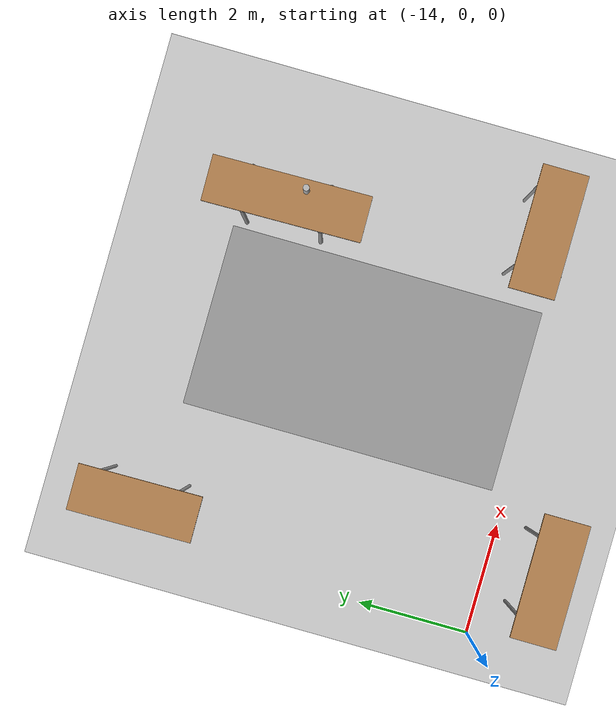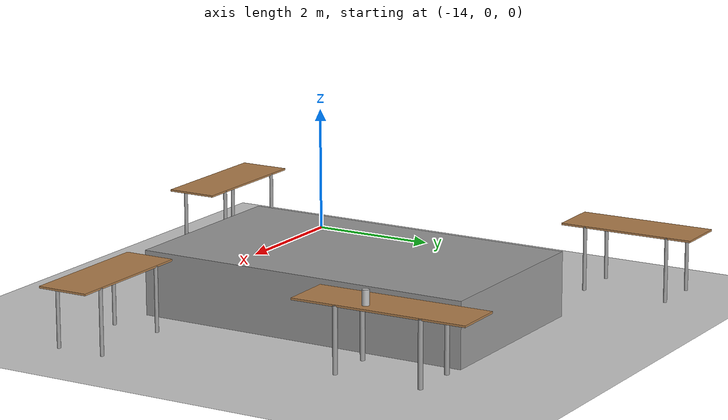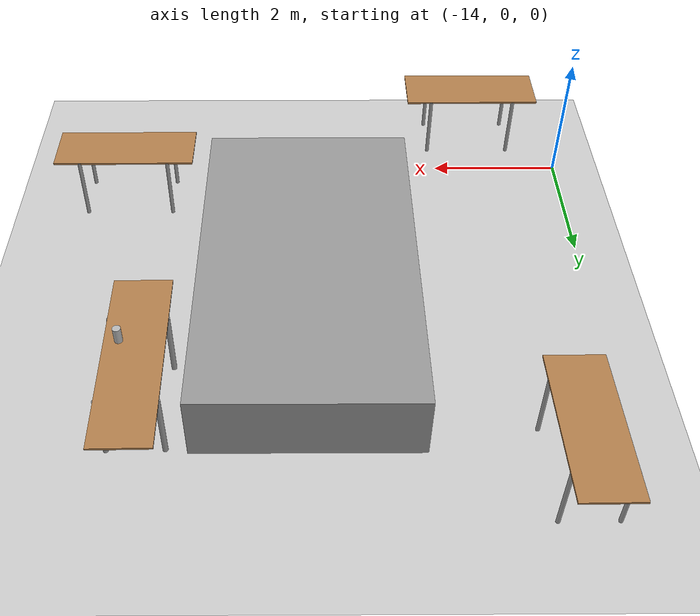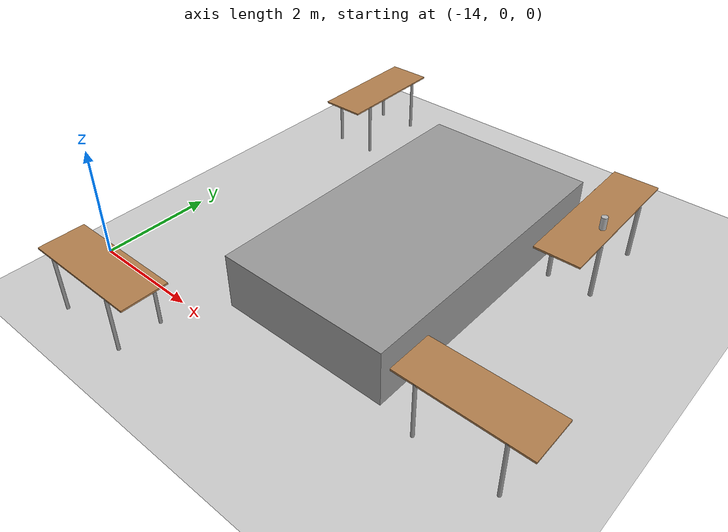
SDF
<sdf version="1.6">
 <world name="default">
  <model name="ground_plane">
   <static>1</static>
   <link name="link">
    <collision name="collision">
     <geometry><plane><normal>0 0 1</normal><size>100 100</size></plane></geometry>
     <surface><friction><ode><mu>100</mu><mu2>50</mu2></ode></friction></surface>
    </collision>
    <visual name="visual">
     <cast_shadows>0</cast_shadows>
     <geometry><plane><normal>0 0 1</normal><size>100 100</size></plane></geometry>
     <material>
      <script><uri>file://media/materials/scripts/gazebo.material</uri><name>Gazebo/Grey</name></script>
     </material>
    </visual>
   </link>
  </model>
  <model name="table">
   <link name="link">
    <pose>0.29068 0 0 0 -0 0</pose>
    <inertial>
     <inertia><ixx>0</ixx><ixy>0</ixy><ixz>0</ixz><iyy>0</iyy><iyz>0</iyz><izz>0</izz></inertia>
     <mass>0</mass>
    </inertial>
    <visual name="front_left_leg">
     <pose>0.68 0.38 0.5 0 -0 0</pose>
     <geometry><cylinder><radius>0.0286498</radius><length>1</length></cylinder></geometry>
     <material>
      <script><uri>file://media/materials/scripts/gazebo.material</uri><name>Gazebo/Grey</name></script>
     </material>
    </visual>
    <visual name="back_right_leg">
     <pose>-0.68 -0.38 0.5 0 -0 0</pose>
     <geometry><cylinder><radius>0.0286498</radius><length>1</length></cylinder></geometry>
     <material>
      <script><uri>file://media/materials/scripts/gazebo.material</uri><name>Gazebo/Grey</name></script>
     </material>
    </visual>
    <visual name="back_left_leg">
     <pose>-0.68 0.38 0.5 0 -0 0</pose>
     <geometry><cylinder><radius>0.0286498</radius><length>1</length></cylinder></geometry>
     <material>
      <script><uri>file://media/materials/scripts/gazebo.material</uri><name>Gazebo/Grey</name></script>
     </material>
    </visual>
    <visual name="front_right_leg">
     <pose>0.68 -0.38 0.5 0 -0 0</pose>
     <geometry><cylinder><radius>0.0286498</radius><length>1</length></cylinder></geometry>
     <material>
      <script><uri>file://media/materials/scripts/gazebo.material</uri><name>Gazebo/Grey</name></script>
     </material>
    </visual>
    <visual name="visual1">
     <pose>0 0 1 0 -0 0</pose>
     <geometry><box><size>2.14873 0.8 0.03</size></box></geometry>
     <material>
      <script><uri>file://media/materials/scripts/gazebo.material</uri><name>Gazebo/Wood</name></script>
     </material>
    </visual>
    <collision name="front_left_leg">
     <pose>0.68 0.38 0.5 0 -0 0</pose>
     <geometry><cylinder><radius>0.02865</radius><length>1</length></cylinder></geometry>
     <surface>
      <friction>
       <ode><mu>1</mu><mu2>1</mu2><fdir1>0 0 0</fdir1><slip1>0</slip1><slip2>0</slip2></ode>
       <torsional>
        <coefficient>1</coefficient>
        <patch_radius>0</patch_radius>
        <surface_radius>0</surface_radius>
        <use_patch_radius>1</use_patch_radius>
        <ode><slip>0</slip></ode>
       </torsional>
      </friction>
      <bounce><restitution_coefficient>0</restitution_coefficient><threshold>1e+06</threshold></bounce>
      <contact>
       <collide_without_contact>0</collide_without_contact>
       <collide_without_contact_bitmask>1</collide_without_contact_bitmask>
       <collide_bitmask>1</collide_bitmask>
       <ode>
        <soft_cfm>0</soft_cfm>
        <soft_erp>0.2</soft_erp>
        <kp>1e+13</kp>
        <kd>1</kd>
        <max_vel>0.01</max_vel>
        <min_depth>0</min_depth>
       </ode>
       <bullet>
        <split_impulse>1</split_impulse>
        <split_impulse_penetration_threshold>-0.01</split_impulse_penetration_threshold>
        <soft_cfm>0</soft_cfm>
        <soft_erp>0.2</soft_erp>
        <kp>1e+13</kp>
        <kd>1</kd>
       </bullet>
      </contact>
     </surface>
    </collision>
    <collision name="front_right_leg">
     <pose>0.68 -0.38 0.5 0 -0 0</pose>
     <geometry><cylinder><radius>0.02865</radius><length>1</length></cylinder></geometry>
     <surface>
      <friction>
       <ode><mu>1</mu><mu2>1</mu2><fdir1>0 0 0</fdir1><slip1>0</slip1><slip2>0</slip2></ode>
       <torsional>
        <coefficient>1</coefficient>
        <patch_radius>0</patch_radius>
        <surface_radius>0</surface_radius>
        <use_patch_radius>1</use_patch_radius>
        <ode><slip>0</slip></ode>
       </torsional>
      </friction>
      <bounce><restitution_coefficient>0</restitution_coefficient><threshold>1e+06</threshold></bounce>
      <contact>
       <collide_without_contact>0</collide_without_contact>
       <collide_without_contact_bitmask>1</collide_without_contact_bitmask>
       <collide_bitmask>1</collide_bitmask>
       <ode>
        <soft_cfm>0</soft_cfm>
        <soft_erp>0.2</soft_erp>
        <kp>1e+13</kp>
        <kd>1</kd>
        <max_vel>0.01</max_vel>
        <min_depth>0</min_depth>
       </ode>
       <bullet>
        <split_impulse>1</split_impulse>
        <split_impulse_penetration_threshold>-0.01</split_impulse_penetration_threshold>
        <soft_cfm>0</soft_cfm>
        <soft_erp>0.2</soft_erp>
        <kp>1e+13</kp>
        <kd>1</kd>
       </bullet>
      </contact>
     </surface>
    </collision>
    <collision name="back_right_leg">
     <pose>-0.68 -0.38 0.5 0 -0 0</pose>
     <geometry><cylinder><radius>0.02865</radius><length>1</length></cylinder></geometry>
     <surface>
      <friction>
       <ode><mu>1</mu><mu2>1</mu2><fdir1>0 0 0</fdir1><slip1>0</slip1><slip2>0</slip2></ode>
       <torsional>
        <coefficient>1</coefficient>
        <patch_radius>0</patch_radius>
        <surface_radius>0</surface_radius>
        <use_patch_radius>1</use_patch_radius>
        <ode><slip>0</slip></ode>
       </torsional>
      </friction>
      <bounce><restitution_coefficient>0</restitution_coefficient><threshold>1e+06</threshold></bounce>
      <contact>
       <collide_without_contact>0</collide_without_contact>
       <collide_without_contact_bitmask>1</collide_without_contact_bitmask>
       <collide_bitmask>1</collide_bitmask>
       <ode>
        <soft_cfm>0</soft_cfm>
        <soft_erp>0.2</soft_erp>
        <kp>1e+13</kp>
        <kd>1</kd>
        <max_vel>0.01</max_vel>
        <min_depth>0</min_depth>
       </ode>
       <bullet>
        <split_impulse>1</split_impulse>
        <split_impulse_penetration_threshold>-0.01</split_impulse_penetration_threshold>
        <soft_cfm>0</soft_cfm>
        <soft_erp>0.2</soft_erp>
        <kp>1e+13</kp>
        <kd>1</kd>
       </bullet>
      </contact>
     </surface>
    </collision>
    <collision name="back_left_leg">
     <pose>-0.68 0.38 0.5 0 -0 0</pose>
     <geometry><cylinder><radius>0.02865</radius><length>1</length></cylinder></geometry>
     <surface>
      <friction>
       <ode><mu>1</mu><mu2>1</mu2><fdir1>0 0 0</fdir1><slip1>0</slip1><slip2>0</slip2></ode>
       <torsional>
        <coefficient>1</coefficient>
        <patch_radius>0</patch_radius>
        <surface_radius>0</surface_radius>
        <use_patch_radius>1</use_patch_radius>
        <ode><slip>0</slip></ode>
       </torsional>
      </friction>
      <bounce><restitution_coefficient>0</restitution_coefficient><threshold>1e+06</threshold></bounce>
      <contact>
       <collide_without_contact>0</collide_without_contact>
       <collide_without_contact_bitmask>1</collide_without_contact_bitmask>
       <collide_bitmask>1</collide_bitmask>
       <ode>
        <soft_cfm>0</soft_cfm>
        <soft_erp>0.2</soft_erp>
        <kp>1e+13</kp>
        <kd>1</kd>
        <max_vel>0.01</max_vel>
        <min_depth>0</min_depth>
       </ode>
       <bullet>
        <split_impulse>1</split_impulse>
        <split_impulse_penetration_threshold>-0.01</split_impulse_penetration_threshold>
        <soft_cfm>0</soft_cfm>
        <soft_erp>0.2</soft_erp>
        <kp>1e+13</kp>
        <kd>1</kd>
       </bullet>
      </contact>
     </surface>
    </collision>
    <collision name="surface">
     <pose>0 0 1 0 -0 0</pose>
     <geometry><box><size>2.14873 0.8 0.03</size></box></geometry>
     <surface>
      <friction>
       <ode><mu>0.6</mu><mu2>0.6</mu2><fdir1>0 0 0</fdir1><slip1>0</slip1><slip2>0</slip2></ode>
       <torsional>
        <coefficient>1</coefficient>
        <patch_radius>0</patch_radius>
        <surface_radius>0</surface_radius>
        <use_patch_radius>1</use_patch_radius>
        <ode><slip>0</slip></ode>
       </torsional>
      </friction>
      <bounce><restitution_coefficient>0</restitution_coefficient><threshold>1e+06</threshold></bounce>
      <contact>
       <collide_without_contact>0</collide_without_contact>
       <collide_without_contact_bitmask>1</collide_without_contact_bitmask>
       <collide_bitmask>1</collide_bitmask>
       <ode>
        <soft_cfm>0</soft_cfm>
        <soft_erp>0.2</soft_erp>
        <kp>1e+13</kp>
        <kd>1</kd>
        <max_vel>0.01</max_vel>
        <min_depth>0</min_depth>
       </ode>
       <bullet>
        <split_impulse>1</split_impulse>
        <split_impulse_penetration_threshold>-0.01</split_impulse_penetration_threshold>
        <soft_cfm>0</soft_cfm>
        <soft_erp>0.2</soft_erp>
        <kp>1e+13</kp>
        <kd>1</kd>
       </bullet>
      </contact>
     </surface>
    </collision>
   </link>
   <static>1</static>
   <pose>-7.26339 0.73651 0 0 -0 0</pose>
  </model>
  <model name="table_clone_clone">
   <link name="link">
    <pose>0.29068 0 0 0 -0 0</pose>
    <inertial>
     <inertia><ixx>0</ixx><ixy>0</ixy><ixz>0</ixz><iyy>0</iyy><iyz>0</iyz><izz>0</izz></inertia>
     <mass>0</mass>
    </inertial>
    <visual name="back_left_leg">
     <pose>-0.68 0.38 0.5 0 -0 0</pose>
     <geometry><cylinder><radius>0.0363517</radius><length>1</length></cylinder></geometry>
     <material>
      <script><uri>file://media/materials/scripts/gazebo.material</uri><name>Gazebo/Grey</name></script>
     </material>
    </visual>
    <visual name="front_right_leg">
     <pose>0.68 -0.38 0.5 0 -0 0</pose>
     <geometry><cylinder><radius>0.0363517</radius><length>1</length></cylinder></geometry>
     <material>
      <script><uri>file://media/materials/scripts/gazebo.material</uri><name>Gazebo/Grey</name></script>
     </material>
    </visual>
    <visual name="back_right_leg">
     <pose>-0.68 -0.38 0.5 0 -0 0</pose>
     <geometry><cylinder><radius>0.0363517</radius><length>1</length></cylinder></geometry>
     <material>
      <script><uri>file://media/materials/scripts/gazebo.material</uri><name>Gazebo/Grey</name></script>
     </material>
    </visual>
    <visual name="front_left_leg">
     <pose>0.68 0.38 0.5 0 -0 0</pose>
     <geometry><cylinder><radius>0.0363517</radius><length>1</length></cylinder></geometry>
     <material>
      <script><uri>file://media/materials/scripts/gazebo.material</uri><name>Gazebo/Grey</name></script>
     </material>
    </visual>
    <visual name="visual1">
     <pose>0 0 1 0 -0 0</pose>
     <geometry><box><size>2.76183 0.8 0.03</size></box></geometry>
     <material>
      <script><uri>file://media/materials/scripts/gazebo.material</uri><name>Gazebo/Wood</name></script>
     </material>
    </visual>
    <collision name="front_left_leg">
     <pose>0.68 0.38 0.5 0 -0 0</pose>
     <geometry><cylinder><radius>0.036352</radius><length>1</length></cylinder></geometry>
     <surface>
      <friction>
       <ode><mu>1</mu><mu2>1</mu2><fdir1>0 0 0</fdir1><slip1>0</slip1><slip2>0</slip2></ode>
       <torsional>
        <coefficient>1</coefficient>
        <patch_radius>0</patch_radius>
        <surface_radius>0</surface_radius>
        <use_patch_radius>1</use_patch_radius>
        <ode><slip>0</slip></ode>
       </torsional>
      </friction>
      <bounce><restitution_coefficient>0</restitution_coefficient><threshold>1e+06</threshold></bounce>
      <contact>
       <collide_without_contact>0</collide_without_contact>
       <collide_without_contact_bitmask>1</collide_without_contact_bitmask>
       <collide_bitmask>1</collide_bitmask>
       <ode>
        <soft_cfm>0</soft_cfm>
        <soft_erp>0.2</soft_erp>
        <kp>1e+13</kp>
        <kd>1</kd>
        <max_vel>0.01</max_vel>
        <min_depth>0</min_depth>
       </ode>
       <bullet>
        <split_impulse>1</split_impulse>
        <split_impulse_penetration_threshold>-0.01</split_impulse_penetration_threshold>
        <soft_cfm>0</soft_cfm>
        <soft_erp>0.2</soft_erp>
        <kp>1e+13</kp>
        <kd>1</kd>
       </bullet>
      </contact>
     </surface>
    </collision>
    <collision name="front_right_leg">
     <pose>0.68 -0.38 0.5 0 -0 0</pose>
     <geometry><cylinder><radius>0.036352</radius><length>1</length></cylinder></geometry>
     <surface>
      <friction>
       <ode><mu>1</mu><mu2>1</mu2><fdir1>0 0 0</fdir1><slip1>0</slip1><slip2>0</slip2></ode>
       <torsional>
        <coefficient>1</coefficient>
        <patch_radius>0</patch_radius>
        <surface_radius>0</surface_radius>
        <use_patch_radius>1</use_patch_radius>
        <ode><slip>0</slip></ode>
       </torsional>
      </friction>
      <bounce><restitution_coefficient>0</restitution_coefficient><threshold>1e+06</threshold></bounce>
      <contact>
       <collide_without_contact>0</collide_without_contact>
       <collide_without_contact_bitmask>1</collide_without_contact_bitmask>
       <collide_bitmask>1</collide_bitmask>
       <ode>
        <soft_cfm>0</soft_cfm>
        <soft_erp>0.2</soft_erp>
        <kp>1e+13</kp>
        <kd>1</kd>
        <max_vel>0.01</max_vel>
        <min_depth>0</min_depth>
       </ode>
       <bullet>
        <split_impulse>1</split_impulse>
        <split_impulse_penetration_threshold>-0.01</split_impulse_penetration_threshold>
        <soft_cfm>0</soft_cfm>
        <soft_erp>0.2</soft_erp>
        <kp>1e+13</kp>
        <kd>1</kd>
       </bullet>
      </contact>
     </surface>
    </collision>
    <collision name="back_right_leg">
     <pose>-0.68 -0.38 0.5 0 -0 0</pose>
     <geometry><cylinder><radius>0.036352</radius><length>1</length></cylinder></geometry>
     <surface>
      <friction>
       <ode><mu>1</mu><mu2>1</mu2><fdir1>0 0 0</fdir1><slip1>0</slip1><slip2>0</slip2></ode>
       <torsional>
        <coefficient>1</coefficient>
        <patch_radius>0</patch_radius>
        <surface_radius>0</surface_radius>
        <use_patch_radius>1</use_patch_radius>
        <ode><slip>0</slip></ode>
       </torsional>
      </friction>
      <bounce><restitution_coefficient>0</restitution_coefficient><threshold>1e+06</threshold></bounce>
      <contact>
       <collide_without_contact>0</collide_without_contact>
       <collide_without_contact_bitmask>1</collide_without_contact_bitmask>
       <collide_bitmask>1</collide_bitmask>
       <ode>
        <soft_cfm>0</soft_cfm>
        <soft_erp>0.2</soft_erp>
        <kp>1e+13</kp>
        <kd>1</kd>
        <max_vel>0.01</max_vel>
        <min_depth>0</min_depth>
       </ode>
       <bullet>
        <split_impulse>1</split_impulse>
        <split_impulse_penetration_threshold>-0.01</split_impulse_penetration_threshold>
        <soft_cfm>0</soft_cfm>
        <soft_erp>0.2</soft_erp>
        <kp>1e+13</kp>
        <kd>1</kd>
       </bullet>
      </contact>
     </surface>
    </collision>
    <collision name="back_left_leg">
     <pose>-0.68 0.38 0.5 0 -0 0</pose>
     <geometry><cylinder><radius>0.036352</radius><length>1</length></cylinder></geometry>
     <surface>
      <friction>
       <ode><mu>1</mu><mu2>1</mu2><fdir1>0 0 0</fdir1><slip1>0</slip1><slip2>0</slip2></ode>
       <torsional>
        <coefficient>1</coefficient>
        <patch_radius>0</patch_radius>
        <surface_radius>0</surface_radius>
        <use_patch_radius>1</use_patch_radius>
        <ode><slip>0</slip></ode>
       </torsional>
      </friction>
      <bounce><restitution_coefficient>0</restitution_coefficient><threshold>1e+06</threshold></bounce>
      <contact>
       <collide_without_contact>0</collide_without_contact>
       <collide_without_contact_bitmask>1</collide_without_contact_bitmask>
       <collide_bitmask>1</collide_bitmask>
       <ode>
        <soft_cfm>0</soft_cfm>
        <soft_erp>0.2</soft_erp>
        <kp>1e+13</kp>
        <kd>1</kd>
        <max_vel>0.01</max_vel>
        <min_depth>0</min_depth>
       </ode>
       <bullet>
        <split_impulse>1</split_impulse>
        <split_impulse_penetration_threshold>-0.01</split_impulse_penetration_threshold>
        <soft_cfm>0</soft_cfm>
        <soft_erp>0.2</soft_erp>
        <kp>1e+13</kp>
        <kd>1</kd>
       </bullet>
      </contact>
     </surface>
    </collision>
    <collision name="surface">
     <pose>0 0 1 0 -0 0</pose>
     <geometry><box><size>2.76183 0.8 0.03</size></box></geometry>
     <surface>
      <friction>
       <ode><mu>0.6</mu><mu2>0.6</mu2><fdir1>0 0 0</fdir1><slip1>0</slip1><slip2>0</slip2></ode>
       <torsional>
        <coefficient>1</coefficient>
        <patch_radius>0</patch_radius>
        <surface_radius>0</surface_radius>
        <use_patch_radius>1</use_patch_radius>
        <ode><slip>0</slip></ode>
       </torsional>
      </friction>
      <bounce><restitution_coefficient>0</restitution_coefficient><threshold>1e+06</threshold></bounce>
      <contact>
       <collide_without_contact>0</collide_without_contact>
       <collide_without_contact_bitmask>1</collide_without_contact_bitmask>
       <collide_bitmask>1</collide_bitmask>
       <ode>
        <soft_cfm>0</soft_cfm>
        <soft_erp>0.2</soft_erp>
        <kp>1e+13</kp>
        <kd>1</kd>
        <max_vel>0.01</max_vel>
        <min_depth>0</min_depth>
       </ode>
       <bullet>
        <split_impulse>1</split_impulse>
        <split_impulse_penetration_threshold>-0.01</split_impulse_penetration_threshold>
        <soft_cfm>0</soft_cfm>
        <soft_erp>0.2</soft_erp>
        <kp>1e+13</kp>
        <kd>1</kd>
       </bullet>
      </contact>
     </surface>
    </collision>
   </link>
   <static>1</static>
   <pose>-7.63558 5.38688 0 0 0 -1.55515</pose>
  </model>
  <model name="unit_box_3">
   <link name="link">
    <inertial>
     <mass>16.4939</mass>
     <inertia><ixx>40.8562</ixx><ixy>0</ixy><ixz>0</ixz><iyy>14.392</iyy><iyz>0</iyz><izz>52.4992</izz></inertia>
    </inertial>
    <pose>1.24834 0 0 0 -0 0</pose>
    <visual name="visual">
     <geometry><box><size>3.07747 5.35953 1</size></box></geometry>
     <material>
      <script><name>Gazebo/Grey</name><uri>file://media/materials/scripts/gazebo.material</uri></script>
     </material>
    </visual>
    <collision name="collision">
     <geometry><box><size>3.07747 5.35953 1</size></box></geometry>
     <surface>
      <friction>
       <ode><mu>1</mu><mu2>1</mu2><fdir1>0 0 0</fdir1><slip1>0</slip1><slip2>0</slip2></ode>
       <torsional>
        <coefficient>1</coefficient>
        <patch_radius>0</patch_radius>
        <surface_radius>0</surface_radius>
        <use_patch_radius>1</use_patch_radius>
        <ode><slip>0</slip></ode>
       </torsional>
      </friction>
      <bounce><restitution_coefficient>0</restitution_coefficient><threshold>1e+06</threshold></bounce>
      <contact>
       <collide_without_contact>0</collide_without_contact>
       <collide_without_contact_bitmask>1</collide_without_contact_bitmask>
       <collide_bitmask>1</collide_bitmask>
       <ode>
        <soft_cfm>0</soft_cfm>
        <soft_erp>0.2</soft_erp>
        <kp>1e+13</kp>
        <kd>1</kd>
        <max_vel>0.01</max_vel>
        <min_depth>0</min_depth>
       </ode>
       <bullet>
        <split_impulse>1</split_impulse>
        <split_impulse_penetration_threshold>-0.01</split_impulse_penetration_threshold>
        <soft_cfm>0</soft_cfm>
        <soft_erp>0.2</soft_erp>
        <kp>1e+13</kp>
        <kd>1</kd>
       </bullet>
      </contact>
     </surface>
    </collision>
   </link>
   <static>0</static>
   <pose>-11.0929 3.1511 0.5 0 -0 0</pose>
  </model>
  <model name="table_0">
   <link name="link">
    <pose>0.29068 0 0 0 -0 0</pose>
    <inertial>
     <inertia><ixx>0</ixx><ixy>0</ixy><ixz>0</ixz><iyy>0</iyy><iyz>0</iyz><izz>0</izz></inertia>
     <mass>0</mass>
    </inertial>
    <visual name="front_left_leg">
     <pose>0.68 0.38 0.5 0 -0 0</pose>
     <geometry><cylinder><radius>0.0286498</radius><length>1</length></cylinder></geometry>
     <material>
      <script><uri>file://media/materials/scripts/gazebo.material</uri><name>Gazebo/Grey</name></script>
     </material>
    </visual>
    <visual name="back_right_leg">
     <pose>-0.68 -0.38 0.5 0 -0 0</pose>
     <geometry><cylinder><radius>0.0286498</radius><length>1</length></cylinder></geometry>
     <material>
      <script><uri>file://media/materials/scripts/gazebo.material</uri><name>Gazebo/Grey</name></script>
     </material>
    </visual>
    <visual name="back_left_leg">
     <pose>-0.68 0.38 0.5 0 -0 0</pose>
     <geometry><cylinder><radius>0.0286498</radius><length>1</length></cylinder></geometry>
     <material>
      <script><uri>file://media/materials/scripts/gazebo.material</uri><name>Gazebo/Grey</name></script>
     </material>
    </visual>
    <visual name="front_right_leg">
     <pose>0.68 -0.38 0.5 0 -0 0</pose>
     <geometry><cylinder><radius>0.0286498</radius><length>1</length></cylinder></geometry>
     <material>
      <script><uri>file://media/materials/scripts/gazebo.material</uri><name>Gazebo/Grey</name></script>
     </material>
    </visual>
    <visual name="visual1">
     <pose>0 0 1 0 -0 0</pose>
     <geometry><box><size>2.14873 0.8 0.03</size></box></geometry>
     <material>
      <script><uri>file://media/materials/scripts/gazebo.material</uri><name>Gazebo/Wood</name></script>
     </material>
    </visual>
    <collision name="front_left_leg">
     <pose>0.68 0.38 0.5 0 -0 0</pose>
     <geometry><cylinder><radius>0.02865</radius><length>1</length></cylinder></geometry>
     <surface>
      <friction>
       <ode><mu>1</mu><mu2>1</mu2><fdir1>0 0 0</fdir1><slip1>0</slip1><slip2>0</slip2></ode>
       <torsional>
        <coefficient>1</coefficient>
        <patch_radius>0</patch_radius>
        <surface_radius>0</surface_radius>
        <use_patch_radius>1</use_patch_radius>
        <ode><slip>0</slip></ode>
       </torsional>
      </friction>
      <bounce><restitution_coefficient>0</restitution_coefficient><threshold>1e+06</threshold></bounce>
      <contact>
       <collide_without_contact>0</collide_without_contact>
       <collide_without_contact_bitmask>1</collide_without_contact_bitmask>
       <collide_bitmask>1</collide_bitmask>
       <ode>
        <soft_cfm>0</soft_cfm>
        <soft_erp>0.2</soft_erp>
        <kp>1e+13</kp>
        <kd>1</kd>
        <max_vel>0.01</max_vel>
        <min_depth>0</min_depth>
       </ode>
       <bullet>
        <split_impulse>1</split_impulse>
        <split_impulse_penetration_threshold>-0.01</split_impulse_penetration_threshold>
        <soft_cfm>0</soft_cfm>
        <soft_erp>0.2</soft_erp>
        <kp>1e+13</kp>
        <kd>1</kd>
       </bullet>
      </contact>
     </surface>
    </collision>
    <collision name="front_right_leg">
     <pose>0.68 -0.38 0.5 0 -0 0</pose>
     <geometry><cylinder><radius>0.02865</radius><length>1</length></cylinder></geometry>
     <surface>
      <friction>
       <ode><mu>1</mu><mu2>1</mu2><fdir1>0 0 0</fdir1><slip1>0</slip1><slip2>0</slip2></ode>
       <torsional>
        <coefficient>1</coefficient>
        <patch_radius>0</patch_radius>
        <surface_radius>0</surface_radius>
        <use_patch_radius>1</use_patch_radius>
        <ode><slip>0</slip></ode>
       </torsional>
      </friction>
      <bounce><restitution_coefficient>0</restitution_coefficient><threshold>1e+06</threshold></bounce>
      <contact>
       <collide_without_contact>0</collide_without_contact>
       <collide_without_contact_bitmask>1</collide_without_contact_bitmask>
       <collide_bitmask>1</collide_bitmask>
       <ode>
        <soft_cfm>0</soft_cfm>
        <soft_erp>0.2</soft_erp>
        <kp>1e+13</kp>
        <kd>1</kd>
        <max_vel>0.01</max_vel>
        <min_depth>0</min_depth>
       </ode>
       <bullet>
        <split_impulse>1</split_impulse>
        <split_impulse_penetration_threshold>-0.01</split_impulse_penetration_threshold>
        <soft_cfm>0</soft_cfm>
        <soft_erp>0.2</soft_erp>
        <kp>1e+13</kp>
        <kd>1</kd>
       </bullet>
      </contact>
     </surface>
    </collision>
    <collision name="back_right_leg">
     <pose>-0.68 -0.38 0.5 0 -0 0</pose>
     <geometry><cylinder><radius>0.02865</radius><length>1</length></cylinder></geometry>
     <surface>
      <friction>
       <ode><mu>1</mu><mu2>1</mu2><fdir1>0 0 0</fdir1><slip1>0</slip1><slip2>0</slip2></ode>
       <torsional>
        <coefficient>1</coefficient>
        <patch_radius>0</patch_radius>
        <surface_radius>0</surface_radius>
        <use_patch_radius>1</use_patch_radius>
        <ode><slip>0</slip></ode>
       </torsional>
      </friction>
      <bounce><restitution_coefficient>0</restitution_coefficient><threshold>1e+06</threshold></bounce>
      <contact>
       <collide_without_contact>0</collide_without_contact>
       <collide_without_contact_bitmask>1</collide_without_contact_bitmask>
       <collide_bitmask>1</collide_bitmask>
       <ode>
        <soft_cfm>0</soft_cfm>
        <soft_erp>0.2</soft_erp>
        <kp>1e+13</kp>
        <kd>1</kd>
        <max_vel>0.01</max_vel>
        <min_depth>0</min_depth>
       </ode>
       <bullet>
        <split_impulse>1</split_impulse>
        <split_impulse_penetration_threshold>-0.01</split_impulse_penetration_threshold>
        <soft_cfm>0</soft_cfm>
        <soft_erp>0.2</soft_erp>
        <kp>1e+13</kp>
        <kd>1</kd>
       </bullet>
      </contact>
     </surface>
    </collision>
    <collision name="back_left_leg">
     <pose>-0.68 0.38 0.5 0 -0 0</pose>
     <geometry><cylinder><radius>0.02865</radius><length>1</length></cylinder></geometry>
     <surface>
      <friction>
       <ode><mu>1</mu><mu2>1</mu2><fdir1>0 0 0</fdir1><slip1>0</slip1><slip2>0</slip2></ode>
       <torsional>
        <coefficient>1</coefficient>
        <patch_radius>0</patch_radius>
        <surface_radius>0</surface_radius>
        <use_patch_radius>1</use_patch_radius>
        <ode><slip>0</slip></ode>
       </torsional>
      </friction>
      <bounce><restitution_coefficient>0</restitution_coefficient><threshold>1e+06</threshold></bounce>
      <contact>
       <collide_without_contact>0</collide_without_contact>
       <collide_without_contact_bitmask>1</collide_without_contact_bitmask>
       <collide_bitmask>1</collide_bitmask>
       <ode>
        <soft_cfm>0</soft_cfm>
        <soft_erp>0.2</soft_erp>
        <kp>1e+13</kp>
        <kd>1</kd>
        <max_vel>0.01</max_vel>
        <min_depth>0</min_depth>
       </ode>
       <bullet>
        <split_impulse>1</split_impulse>
        <split_impulse_penetration_threshold>-0.01</split_impulse_penetration_threshold>
        <soft_cfm>0</soft_cfm>
        <soft_erp>0.2</soft_erp>
        <kp>1e+13</kp>
        <kd>1</kd>
       </bullet>
      </contact>
     </surface>
    </collision>
    <collision name="surface">
     <pose>0 0 1 0 -0 0</pose>
     <geometry><box><size>2.14873 0.8 0.03</size></box></geometry>
     <surface>
      <friction>
       <ode><mu>0.6</mu><mu2>0.6</mu2><fdir1>0 0 0</fdir1><slip1>0</slip1><slip2>0</slip2></ode>
       <torsional>
        <coefficient>1</coefficient>
        <patch_radius>0</patch_radius>
        <surface_radius>0</surface_radius>
        <use_patch_radius>1</use_patch_radius>
        <ode><slip>0</slip></ode>
       </torsional>
      </friction>
      <bounce><restitution_coefficient>0</restitution_coefficient><threshold>1e+06</threshold></bounce>
      <contact>
       <collide_without_contact>0</collide_without_contact>
       <collide_without_contact_bitmask>1</collide_without_contact_bitmask>
       <collide_bitmask>1</collide_bitmask>
       <ode>
        <soft_cfm>0</soft_cfm>
        <soft_erp>0.2</soft_erp>
        <kp>1e+13</kp>
        <kd>1</kd>
        <max_vel>0.01</max_vel>
        <min_depth>0</min_depth>
       </ode>
       <bullet>
        <split_impulse>1</split_impulse>
        <split_impulse_penetration_threshold>-0.01</split_impulse_penetration_threshold>
        <soft_cfm>0</soft_cfm>
        <soft_erp>0.2</soft_erp>
        <kp>1e+13</kp>
        <kd>1</kd>
       </bullet>
      </contact>
     </surface>
    </collision>
   </link>
   <static>1</static>
   <pose>-12.8772 -0.885329 0 0 -0 0</pose>
  </model>
  <model name="table_1">
   <link name="link">
    <pose>0.29068 0 0 0 -0 0</pose>
    <inertial>
     <inertia><ixx>0</ixx><ixy>0</ixy><ixz>0</ixz><iyy>0</iyy><iyz>0</iyz><izz>0</izz></inertia>
     <mass>0</mass>
    </inertial>
    <visual name="front_left_leg">
     <pose>0.68 0.38 0.5 0 -0 0</pose>
     <geometry><cylinder><radius>0.0286498</radius><length>1</length></cylinder></geometry>
     <material>
      <script><uri>file://media/materials/scripts/gazebo.material</uri><name>Gazebo/Grey</name></script>
     </material>
    </visual>
    <visual name="back_right_leg">
     <pose>-0.68 -0.38 0.5 0 -0 0</pose>
     <geometry><cylinder><radius>0.0286498</radius><length>1</length></cylinder></geometry>
     <material>
      <script><uri>file://media/materials/scripts/gazebo.material</uri><name>Gazebo/Grey</name></script>
     </material>
    </visual>
    <visual name="back_left_leg">
     <pose>-0.68 0.38 0.5 0 -0 0</pose>
     <geometry><cylinder><radius>0.0286498</radius><length>1</length></cylinder></geometry>
     <material>
      <script><uri>file://media/materials/scripts/gazebo.material</uri><name>Gazebo/Grey</name></script>
     </material>
    </visual>
    <visual name="front_right_leg">
     <pose>0.68 -0.38 0.5 0 -0 0</pose>
     <geometry><cylinder><radius>0.0286498</radius><length>1</length></cylinder></geometry>
     <material>
      <script><uri>file://media/materials/scripts/gazebo.material</uri><name>Gazebo/Grey</name></script>
     </material>
    </visual>
    <visual name="visual1">
     <pose>0 0 1 0 -0 0</pose>
     <geometry><box><size>2.14873 0.8 0.03</size></box></geometry>
     <material>
      <script><uri>file://media/materials/scripts/gazebo.material</uri><name>Gazebo/Wood</name></script>
     </material>
    </visual>
    <collision name="front_left_leg">
     <pose>0.68 0.38 0.5 0 -0 0</pose>
     <geometry><cylinder><radius>0.02865</radius><length>1</length></cylinder></geometry>
     <surface>
      <friction>
       <ode><mu>1</mu><mu2>1</mu2><fdir1>0 0 0</fdir1><slip1>0</slip1><slip2>0</slip2></ode>
       <torsional>
        <coefficient>1</coefficient>
        <patch_radius>0</patch_radius>
        <surface_radius>0</surface_radius>
        <use_patch_radius>1</use_patch_radius>
        <ode><slip>0</slip></ode>
       </torsional>
      </friction>
      <bounce><restitution_coefficient>0</restitution_coefficient><threshold>1e+06</threshold></bounce>
      <contact>
       <collide_without_contact>0</collide_without_contact>
       <collide_without_contact_bitmask>1</collide_without_contact_bitmask>
       <collide_bitmask>1</collide_bitmask>
       <ode>
        <soft_cfm>0</soft_cfm>
        <soft_erp>0.2</soft_erp>
        <kp>1e+13</kp>
        <kd>1</kd>
        <max_vel>0.01</max_vel>
        <min_depth>0</min_depth>
       </ode>
       <bullet>
        <split_impulse>1</split_impulse>
        <split_impulse_penetration_threshold>-0.01</split_impulse_penetration_threshold>
        <soft_cfm>0</soft_cfm>
        <soft_erp>0.2</soft_erp>
        <kp>1e+13</kp>
        <kd>1</kd>
       </bullet>
      </contact>
     </surface>
    </collision>
    <collision name="front_right_leg">
     <pose>0.68 -0.38 0.5 0 -0 0</pose>
     <geometry><cylinder><radius>0.02865</radius><length>1</length></cylinder></geometry>
     <surface>
      <friction>
       <ode><mu>1</mu><mu2>1</mu2><fdir1>0 0 0</fdir1><slip1>0</slip1><slip2>0</slip2></ode>
       <torsional>
        <coefficient>1</coefficient>
        <patch_radius>0</patch_radius>
        <surface_radius>0</surface_radius>
        <use_patch_radius>1</use_patch_radius>
        <ode><slip>0</slip></ode>
       </torsional>
      </friction>
      <bounce><restitution_coefficient>0</restitution_coefficient><threshold>1e+06</threshold></bounce>
      <contact>
       <collide_without_contact>0</collide_without_contact>
       <collide_without_contact_bitmask>1</collide_without_contact_bitmask>
       <collide_bitmask>1</collide_bitmask>
       <ode>
        <soft_cfm>0</soft_cfm>
        <soft_erp>0.2</soft_erp>
        <kp>1e+13</kp>
        <kd>1</kd>
        <max_vel>0.01</max_vel>
        <min_depth>0</min_depth>
       </ode>
       <bullet>
        <split_impulse>1</split_impulse>
        <split_impulse_penetration_threshold>-0.01</split_impulse_penetration_threshold>
        <soft_cfm>0</soft_cfm>
        <soft_erp>0.2</soft_erp>
        <kp>1e+13</kp>
        <kd>1</kd>
       </bullet>
      </contact>
     </surface>
    </collision>
    <collision name="back_right_leg">
     <pose>-0.68 -0.38 0.5 0 -0 0</pose>
     <geometry><cylinder><radius>0.02865</radius><length>1</length></cylinder></geometry>
     <surface>
      <friction>
       <ode><mu>1</mu><mu2>1</mu2><fdir1>0 0 0</fdir1><slip1>0</slip1><slip2>0</slip2></ode>
       <torsional>
        <coefficient>1</coefficient>
        <patch_radius>0</patch_radius>
        <surface_radius>0</surface_radius>
        <use_patch_radius>1</use_patch_radius>
        <ode><slip>0</slip></ode>
       </torsional>
      </friction>
      <bounce><restitution_coefficient>0</restitution_coefficient><threshold>1e+06</threshold></bounce>
      <contact>
       <collide_without_contact>0</collide_without_contact>
       <collide_without_contact_bitmask>1</collide_without_contact_bitmask>
       <collide_bitmask>1</collide_bitmask>
       <ode>
        <soft_cfm>0</soft_cfm>
        <soft_erp>0.2</soft_erp>
        <kp>1e+13</kp>
        <kd>1</kd>
        <max_vel>0.01</max_vel>
        <min_depth>0</min_depth>
       </ode>
       <bullet>
        <split_impulse>1</split_impulse>
        <split_impulse_penetration_threshold>-0.01</split_impulse_penetration_threshold>
        <soft_cfm>0</soft_cfm>
        <soft_erp>0.2</soft_erp>
        <kp>1e+13</kp>
        <kd>1</kd>
       </bullet>
      </contact>
     </surface>
    </collision>
    <collision name="back_left_leg">
     <pose>-0.68 0.38 0.5 0 -0 0</pose>
     <geometry><cylinder><radius>0.02865</radius><length>1</length></cylinder></geometry>
     <surface>
      <friction>
       <ode><mu>1</mu><mu2>1</mu2><fdir1>0 0 0</fdir1><slip1>0</slip1><slip2>0</slip2></ode>
       <torsional>
        <coefficient>1</coefficient>
        <patch_radius>0</patch_radius>
        <surface_radius>0</surface_radius>
        <use_patch_radius>1</use_patch_radius>
        <ode><slip>0</slip></ode>
       </torsional>
      </friction>
      <bounce><restitution_coefficient>0</restitution_coefficient><threshold>1e+06</threshold></bounce>
      <contact>
       <collide_without_contact>0</collide_without_contact>
       <collide_without_contact_bitmask>1</collide_without_contact_bitmask>
       <collide_bitmask>1</collide_bitmask>
       <ode>
        <soft_cfm>0</soft_cfm>
        <soft_erp>0.2</soft_erp>
        <kp>1e+13</kp>
        <kd>1</kd>
        <max_vel>0.01</max_vel>
        <min_depth>0</min_depth>
       </ode>
       <bullet>
        <split_impulse>1</split_impulse>
        <split_impulse_penetration_threshold>-0.01</split_impulse_penetration_threshold>
        <soft_cfm>0</soft_cfm>
        <soft_erp>0.2</soft_erp>
        <kp>1e+13</kp>
        <kd>1</kd>
       </bullet>
      </contact>
     </surface>
    </collision>
    <collision name="surface">
     <pose>0 0 1 0 -0 0</pose>
     <geometry><box><size>2.14873 0.8 0.03</size></box></geometry>
     <surface>
      <friction>
       <ode><mu>0.6</mu><mu2>0.6</mu2><fdir1>0 0 0</fdir1><slip1>0</slip1><slip2>0</slip2></ode>
       <torsional>
        <coefficient>1</coefficient>
        <patch_radius>0</patch_radius>
        <surface_radius>0</surface_radius>
        <use_patch_radius>1</use_patch_radius>
        <ode><slip>0</slip></ode>
       </torsional>
      </friction>
      <bounce><restitution_coefficient>0</restitution_coefficient><threshold>1e+06</threshold></bounce>
      <contact>
       <collide_without_contact>0</collide_without_contact>
       <collide_without_contact_bitmask>1</collide_without_contact_bitmask>
       <collide_bitmask>1</collide_bitmask>
       <ode>
        <soft_cfm>0</soft_cfm>
        <soft_erp>0.2</soft_erp>
        <kp>1e+13</kp>
        <kd>1</kd>
        <max_vel>0.01</max_vel>
        <min_depth>0</min_depth>
       </ode>
       <bullet>
        <split_impulse>1</split_impulse>
        <split_impulse_penetration_threshold>-0.01</split_impulse_penetration_threshold>
        <soft_cfm>0</soft_cfm>
        <soft_erp>0.2</soft_erp>
        <kp>1e+13</kp>
        <kd>1</kd>
       </bullet>
      </contact>
     </surface>
    </collision>
   </link>
   <static>1</static>
   <pose>-13.2198 6.44132 0 0 0 -1.56044</pose>
  </model>
  <model name="beer">
   <link name="link">
    <pose>0 0 0.115 0 -0 0</pose>
    <inertial>
     <mass>0.39</mass>
     <inertia><ixx>0.00058</ixx><ixy>0</ixy><ixz>0</ixz><iyy>0.00058</iyy><iyz>0</iyz><izz>0.00019</izz></inertia>
    </inertial>
    <collision name="collision">
     <geometry><cylinder><radius>0.055</radius><length>0.23</length></cylinder></geometry>
    </collision>
    <visual name="visual">
     <geometry><cylinder><radius>0.055</radius><length>0.23</length></cylinder></geometry>
     <material>
      <script>
       <uri>model://beer/materials/scripts</uri>
       <uri>model://beer/materials/textures</uri>
       <name>Beer/Diffuse</name>
      </script>
     </material>
    </visual>
   </link>
   <pose>-7.42397 4.81149 1.015 3e-06 -2.1e-05 -1e-05</pose>
  </model>
 </world>
</sdf>
